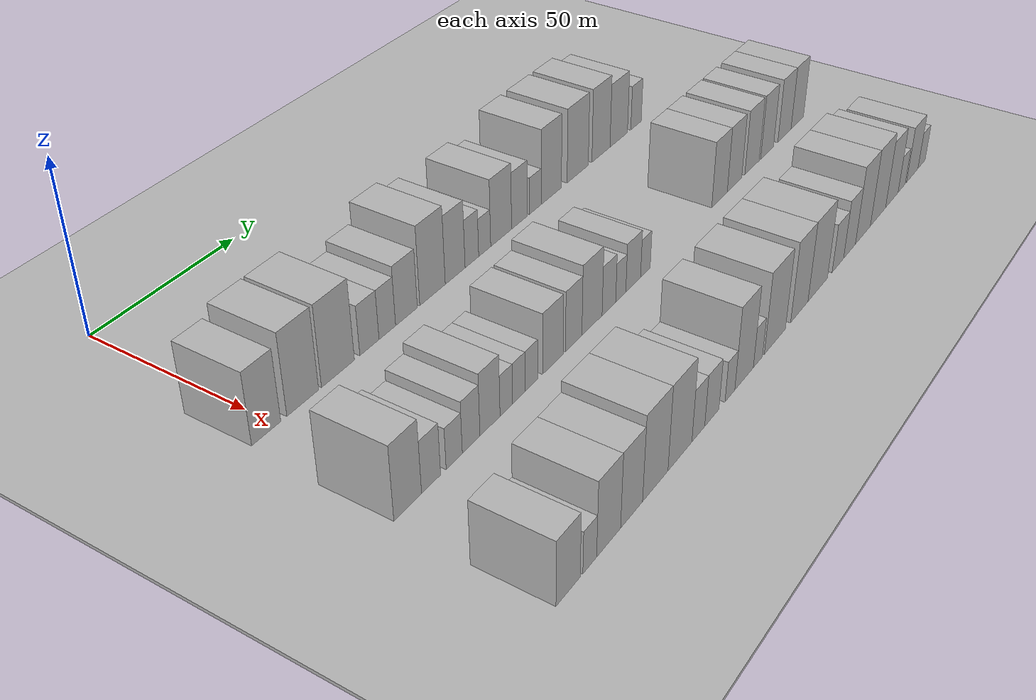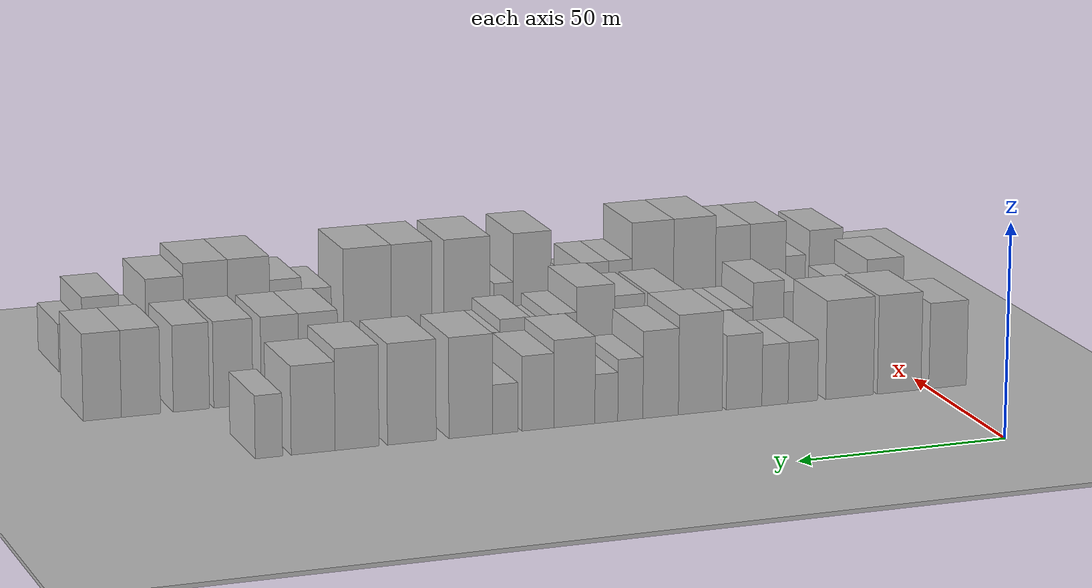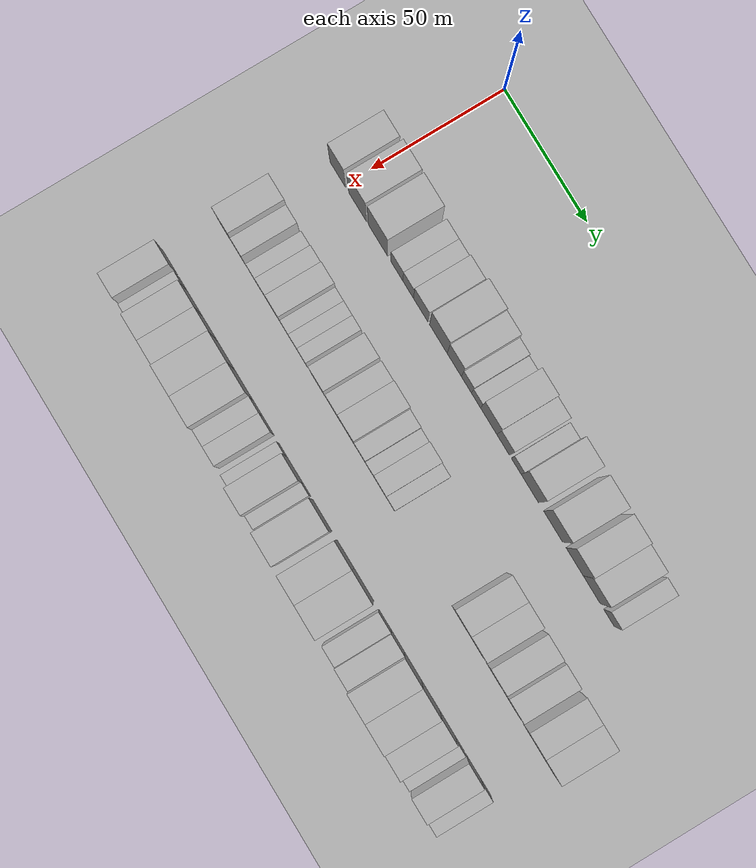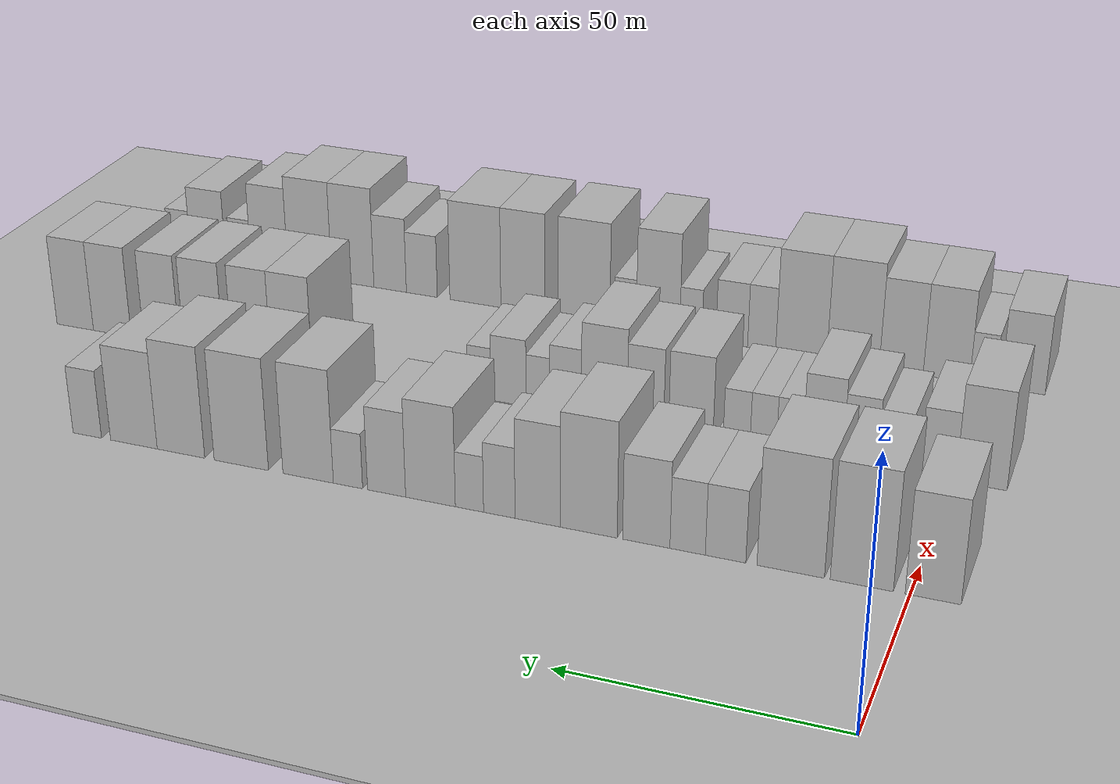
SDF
<sdf version="1.6">
 <world name="default">
  <include><name>ground_plane_1</name><uri>model://HANNAS_ground_plane</uri></include>
  <include>
   <name>ground_plane_2</name>
   <uri>model://HANNAS_ground_plane</uri>
   <pose>100 0 0  0 0 0</pose>
  </include>
  <model name="building_45">
   <static>1</static>
   <pose>50.0000 -3.9452 0 0.000000 0.000000 0.000000</pose>
   <link name="link">
    <pose>0 0 10.50 0 0 0</pose>
    <collision name="collision"><geometry><box><size>20.0000 9.5187 21.0000</size></box></geometry></collision>
    <visual name="visual">
     <cast_shadows>0</cast_shadows>
     <geometry><box><size>20.0000 9.5187 21.0000</size></box></geometry>
     <material>
      <script>
       <uri>model://HANNAS_wall/materials/scripts</uri>
       <uri>model://HANNAS_wall/materials/textures</uri>
       <name>vrc/HANNAS_wall</name>
      </script>
     </material>
    </visual>
   </link>
  </model>
  <model name="building_46">
   <static>1</static>
   <pose>50.0000 8.2798 0 0.000000 0.000000 0.000000</pose>
   <link name="link">
    <pose>0 0 12.00 0 0 0</pose>
    <collision name="collision"><geometry><box><size>20.0000 10.9314 24.0000</size></box></geometry></collision>
    <visual name="visual">
     <cast_shadows>0</cast_shadows>
     <geometry><box><size>20.0000 10.9314 24.0000</size></box></geometry>
     <material>
      <script>
       <uri>model://HANNAS_wall/materials/scripts</uri>
       <uri>model://HANNAS_wall/materials/textures</uri>
       <name>vrc/HANNAS_wall</name>
      </script>
     </material>
    </visual>
   </link>
  </model>
  <model name="building_47">
   <static>1</static>
   <pose>50.0000 20.7100 0 0.000000 0.000000 0.000000</pose>
   <link name="link">
    <pose>0 0 12.00 0 0 0</pose>
    <collision name="collision"><geometry><box><size>20.0000 11.9290 24.0000</size></box></geometry></collision>
    <visual name="visual">
     <cast_shadows>0</cast_shadows>
     <geometry><box><size>20.0000 11.9290 24.0000</size></box></geometry>
     <material>
      <script>
       <uri>model://HANNAS_wall/materials/scripts</uri>
       <uri>model://HANNAS_wall/materials/textures</uri>
       <name>vrc/HANNAS_wall</name>
      </script>
     </material>
    </visual>
   </link>
  </model>
  <model name="building_48">
   <static>1</static>
   <pose>50.0000 32.3218 0 0.000000 0.000000 0.000000</pose>
   <link name="link">
    <pose>0 0 7.50 0 0 0</pose>
    <collision name="collision"><geometry><box><size>20.0000 7.2945 15.0000</size></box></geometry></collision>
    <visual name="visual">
     <cast_shadows>0</cast_shadows>
     <geometry><box><size>20.0000 7.2945 15.0000</size></box></geometry>
     <material>
      <script>
       <uri>model://HANNAS_wall/materials/scripts</uri>
       <uri>model://HANNAS_wall/materials/textures</uri>
       <name>vrc/HANNAS_wall</name>
      </script>
     </material>
    </visual>
   </link>
  </model>
  <model name="building_49">
   <static>1</static>
   <pose>50.0000 39.2046 0 0.000000 0.000000 0.000000</pose>
   <link name="link">
    <pose>0 0 7.50 0 0 0</pose>
    <collision name="collision"><geometry><box><size>20.0000 6.4712 15.0000</size></box></geometry></collision>
    <visual name="visual">
     <cast_shadows>0</cast_shadows>
     <geometry><box><size>20.0000 6.4712 15.0000</size></box></geometry>
     <material>
      <script>
       <uri>model://HANNAS_wall/materials/scripts</uri>
       <uri>model://HANNAS_wall/materials/textures</uri>
       <name>vrc/HANNAS_wall</name>
      </script>
     </material>
    </visual>
   </link>
  </model>
  <model name="building_50">
   <static>1</static>
   <pose>50.0000 46.8143 0 0.000000 0.000000 0.000000</pose>
   <link name="link">
    <pose>0 0 9.00 0 0 0</pose>
    <collision name="collision"><geometry><box><size>20.0000 8.7482 18.0000</size></box></geometry></collision>
    <visual name="visual">
     <cast_shadows>0</cast_shadows>
     <geometry><box><size>20.0000 8.7482 18.0000</size></box></geometry>
     <material>
      <script>
       <uri>model://HANNAS_wall/materials/scripts</uri>
       <uri>model://HANNAS_wall/materials/textures</uri>
       <name>vrc/HANNAS_wall</name>
      </script>
     </material>
    </visual>
   </link>
  </model>
  <model name="building_51">
   <static>1</static>
   <pose>50.0000 57.5398 0 0.000000 0.000000 0.000000</pose>
   <link name="link">
    <pose>0 0 12.00 0 0 0</pose>
    <collision name="collision"><geometry><box><size>20.0000 10.7027 24.0000</size></box></geometry></collision>
    <visual name="visual">
     <cast_shadows>0</cast_shadows>
     <geometry><box><size>20.0000 10.7027 24.0000</size></box></geometry>
     <material>
      <script>
       <uri>model://HANNAS_wall/materials/scripts</uri>
       <uri>model://HANNAS_wall/materials/textures</uri>
       <name>vrc/HANNAS_wall</name>
      </script>
     </material>
    </visual>
   </link>
  </model>
  <model name="building_52">
   <static>1</static>
   <pose>50.0000 67.2111 0 0.000000 0.000000 0.000000</pose>
   <link name="link">
    <pose>0 0 10.50 0 0 0</pose>
    <collision name="collision"><geometry><box><size>20.0000 8.6400 21.0000</size></box></geometry></collision>
    <visual name="visual">
     <cast_shadows>0</cast_shadows>
     <geometry><box><size>20.0000 8.6400 21.0000</size></box></geometry>
     <material>
      <script>
       <uri>model://HANNAS_wall/materials/scripts</uri>
       <uri>model://HANNAS_wall/materials/textures</uri>
       <name>vrc/HANNAS_wall</name>
      </script>
     </material>
    </visual>
   </link>
  </model>
  <model name="building_53">
   <static>1</static>
   <pose>50.0000 74.5766 0 0.000000 0.000000 0.000000</pose>
   <link name="link">
    <pose>0 0 7.50 0 0 0</pose>
    <collision name="collision"><geometry><box><size>20.0000 6.0911 15.0000</size></box></geometry></collision>
    <visual name="visual">
     <cast_shadows>0</cast_shadows>
     <geometry><box><size>20.0000 6.0911 15.0000</size></box></geometry>
     <material>
      <script>
       <uri>model://HANNAS_wall/materials/scripts</uri>
       <uri>model://HANNAS_wall/materials/textures</uri>
       <name>vrc/HANNAS_wall</name>
      </script>
     </material>
    </visual>
   </link>
  </model>
  <model name="building_54">
   <static>1</static>
   <pose>50.0000 80.3774 0 0.000000 0.000000 0.000000</pose>
   <link name="link">
    <pose>0 0 6.00 0 0 0</pose>
    <collision name="collision"><geometry><box><size>20.0000 5.5105 12.0000</size></box></geometry></collision>
    <visual name="visual">
     <cast_shadows>0</cast_shadows>
     <geometry><box><size>20.0000 5.5105 12.0000</size></box></geometry>
     <material>
      <script>
       <uri>model://HANNAS_wall/materials/scripts</uri>
       <uri>model://HANNAS_wall/materials/textures</uri>
       <name>vrc/HANNAS_wall</name>
      </script>
     </material>
    </visual>
   </link>
  </model>
  <model name="building_55">
   <static>1</static>
   <pose>50.0000 88.0522 0 0.000000 0.000000 0.000000</pose>
   <link name="link">
    <pose>0 0 10.50 0 0 0</pose>
    <collision name="collision"><geometry><box><size>20.0000 9.8391 21.0000</size></box></geometry></collision>
    <visual name="visual">
     <cast_shadows>0</cast_shadows>
     <geometry><box><size>20.0000 9.8391 21.0000</size></box></geometry>
     <material>
      <script>
       <uri>model://HANNAS_wall/materials/scripts</uri>
       <uri>model://HANNAS_wall/materials/textures</uri>
       <name>vrc/HANNAS_wall</name>
      </script>
     </material>
    </visual>
   </link>
  </model>
  <model name="building_56">
   <static>1</static>
   <pose>50.0000 96.7897 0 0.000000 0.000000 0.000000</pose>
   <link name="link">
    <pose>0 0 9.00 0 0 0</pose>
    <collision name="collision"><geometry><box><size>20.0000 7.6358 18.0000</size></box></geometry></collision>
    <visual name="visual">
     <cast_shadows>0</cast_shadows>
     <geometry><box><size>20.0000 7.6358 18.0000</size></box></geometry>
     <material>
      <script>
       <uri>model://HANNAS_wall/materials/scripts</uri>
       <uri>model://HANNAS_wall/materials/textures</uri>
       <name>vrc/HANNAS_wall</name>
      </script>
     </material>
    </visual>
   </link>
  </model>
  <model name="building_57">
   <static>1</static>
   <pose>50.0000 104.5811 0 0.000000 0.000000 0.000000</pose>
   <link name="link">
    <pose>0 0 6.00 0 0 0</pose>
    <collision name="collision"><geometry><box><size>20.0000 5.9471 12.0000</size></box></geometry></collision>
    <visual name="visual">
     <cast_shadows>0</cast_shadows>
     <geometry><box><size>20.0000 5.9471 12.0000</size></box></geometry>
     <material>
      <script>
       <uri>model://HANNAS_wall/materials/scripts</uri>
       <uri>model://HANNAS_wall/materials/textures</uri>
       <name>vrc/HANNAS_wall</name>
      </script>
     </material>
    </visual>
   </link>
  </model>
  <model name="building_58">
   <static>1</static>
   <pose>50.0000 112.7505 0 0.000000 0.000000 0.000000</pose>
   <link name="link">
    <pose>0 0 12.00 0 0 0</pose>
    <collision name="collision"><geometry><box><size>20.0000 10.3918 24.0000</size></box></geometry></collision>
    <visual name="visual">
     <cast_shadows>0</cast_shadows>
     <geometry><box><size>20.0000 10.3918 24.0000</size></box></geometry>
     <material>
      <script>
       <uri>model://HANNAS_wall/materials/scripts</uri>
       <uri>model://HANNAS_wall/materials/textures</uri>
       <name>vrc/HANNAS_wall</name>
      </script>
     </material>
    </visual>
   </link>
  </model>
  <model name="building_59">
   <static>1</static>
   <pose>50.0000 126.6671 0 0.000000 0.000000 0.000000</pose>
   <link name="link">
    <pose>0 0 12.00 0 0 0</pose>
    <collision name="collision"><geometry><box><size>20.0000 11.4413 24.0000</size></box></geometry></collision>
    <visual name="visual">
     <cast_shadows>0</cast_shadows>
     <geometry><box><size>20.0000 11.4413 24.0000</size></box></geometry>
     <material>
      <script>
       <uri>model://HANNAS_wall/materials/scripts</uri>
       <uri>model://HANNAS_wall/materials/textures</uri>
       <name>vrc/HANNAS_wall</name>
      </script>
     </material>
    </visual>
   </link>
  </model>
  <model name="building_60">
   <static>1</static>
   <pose>50.0000 139.4916 0 0.000000 0.000000 0.000000</pose>
   <link name="link">
    <pose>0 0 12.00 0 0 0</pose>
    <collision name="collision"><geometry><box><size>20.0000 10.2075 24.0000</size></box></geometry></collision>
    <visual name="visual">
     <cast_shadows>0</cast_shadows>
     <geometry><box><size>20.0000 10.2075 24.0000</size></box></geometry>
     <material>
      <script>
       <uri>model://HANNAS_wall/materials/scripts</uri>
       <uri>model://HANNAS_wall/materials/textures</uri>
       <name>vrc/HANNAS_wall</name>
      </script>
     </material>
    </visual>
   </link>
  </model>
  <model name="building_61">
   <static>1</static>
   <pose>50.0000 149.6833 0 0.000000 0.000000 0.000000</pose>
   <link name="link">
    <pose>0 0 10.50 0 0 0</pose>
    <collision name="collision"><geometry><box><size>20.0000 10.1759 21.0000</size></box></geometry></collision>
    <visual name="visual">
     <cast_shadows>0</cast_shadows>
     <geometry><box><size>20.0000 10.1759 21.0000</size></box></geometry>
     <material>
      <script>
       <uri>model://HANNAS_wall/materials/scripts</uri>
       <uri>model://HANNAS_wall/materials/textures</uri>
       <name>vrc/HANNAS_wall</name>
      </script>
     </material>
    </visual>
   </link>
  </model>
  <model name="building_62">
   <static>1</static>
   <pose>50.0000 159.9207 0 0.000000 0.000000 0.000000</pose>
   <link name="link">
    <pose>0 0 7.50 0 0 0</pose>
    <collision name="collision"><geometry><box><size>20.0000 6.2989 15.0000</size></box></geometry></collision>
    <visual name="visual">
     <cast_shadows>0</cast_shadows>
     <geometry><box><size>20.0000 6.2989 15.0000</size></box></geometry>
     <material>
      <script>
       <uri>model://HANNAS_wall/materials/scripts</uri>
       <uri>model://HANNAS_wall/materials/textures</uri>
       <name>vrc/HANNAS_wall</name>
      </script>
     </material>
    </visual>
   </link>
  </model>
  <model name="building_126">
   <static>1</static>
   <pose>90.0000 -5.4050 0 0.000000 0.000000 0.000000</pose>
   <link name="link">
    <pose>0 0 10.50 0 0 0</pose>
    <collision name="collision"><geometry><box><size>20.0000 9.4507 21.0000</size></box></geometry></collision>
    <visual name="visual">
     <cast_shadows>0</cast_shadows>
     <geometry><box><size>20.0000 9.4507 21.0000</size></box></geometry>
     <material>
      <script>
       <uri>model://HANNAS_wall/materials/scripts</uri>
       <uri>model://HANNAS_wall/materials/textures</uri>
       <name>vrc/HANNAS_wall</name>
      </script>
     </material>
    </visual>
   </link>
  </model>
  <model name="building_127">
   <static>1</static>
   <pose>90.0000 2.6796 0 0.000000 0.000000 0.000000</pose>
   <link name="link">
    <pose>0 0 7.50 0 0 0</pose>
    <collision name="collision"><geometry><box><size>20.0000 6.7186 15.0000</size></box></geometry></collision>
    <visual name="visual">
     <cast_shadows>0</cast_shadows>
     <geometry><box><size>20.0000 6.7186 15.0000</size></box></geometry>
     <material>
      <script>
       <uri>model://HANNAS_wall/materials/scripts</uri>
       <uri>model://HANNAS_wall/materials/textures</uri>
       <name>vrc/HANNAS_wall</name>
      </script>
     </material>
    </visual>
   </link>
  </model>
  <model name="building_128">
   <static>1</static>
   <pose>90.0000 11.0172 0 0.000000 0.000000 0.000000</pose>
   <link name="link">
    <pose>0 0 6.00 0 0 0</pose>
    <collision name="collision"><geometry><box><size>20.0000 5.9565 12.0000</size></box></geometry></collision>
    <visual name="visual">
     <cast_shadows>0</cast_shadows>
     <geometry><box><size>20.0000 5.9565 12.0000</size></box></geometry>
     <material>
      <script>
       <uri>model://HANNAS_wall/materials/scripts</uri>
       <uri>model://HANNAS_wall/materials/textures</uri>
       <name>vrc/HANNAS_wall</name>
      </script>
     </material>
    </visual>
   </link>
  </model>
  <model name="building_129">
   <static>1</static>
   <pose>90.0000 17.3304 0 0.000000 0.000000 0.000000</pose>
   <link name="link">
    <pose>0 0 7.50 0 0 0</pose>
    <collision name="collision"><geometry><box><size>20.0000 6.6700 15.0000</size></box></geometry></collision>
    <visual name="visual">
     <cast_shadows>0</cast_shadows>
     <geometry><box><size>20.0000 6.6700 15.0000</size></box></geometry>
     <material>
      <script>
       <uri>model://HANNAS_wall/materials/scripts</uri>
       <uri>model://HANNAS_wall/materials/textures</uri>
       <name>vrc/HANNAS_wall</name>
      </script>
     </material>
    </visual>
   </link>
  </model>
  <model name="building_130">
   <static>1</static>
   <pose>90.0000 24.5818 0 0.000000 0.000000 0.000000</pose>
   <link name="link">
    <pose>0 0 9.00 0 0 0</pose>
    <collision name="collision"><geometry><box><size>20.0000 7.8327 18.0000</size></box></geometry></collision>
    <visual name="visual">
     <cast_shadows>0</cast_shadows>
     <geometry><box><size>20.0000 7.8327 18.0000</size></box></geometry>
     <material>
      <script>
       <uri>model://HANNAS_wall/materials/scripts</uri>
       <uri>model://HANNAS_wall/materials/textures</uri>
       <name>vrc/HANNAS_wall</name>
      </script>
     </material>
    </visual>
   </link>
  </model>
  <model name="building_131">
   <static>1</static>
   <pose>90.0000 31.0258 0 0.000000 0.000000 0.000000</pose>
   <link name="link">
    <pose>0 0 6.00 0 0 0</pose>
    <collision name="collision"><geometry><box><size>20.0000 5.0553 12.0000</size></box></geometry></collision>
    <visual name="visual">
     <cast_shadows>0</cast_shadows>
     <geometry><box><size>20.0000 5.0553 12.0000</size></box></geometry>
     <material>
      <script>
       <uri>model://HANNAS_wall/materials/scripts</uri>
       <uri>model://HANNAS_wall/materials/textures</uri>
       <name>vrc/HANNAS_wall</name>
      </script>
     </material>
    </visual>
   </link>
  </model>
  <model name="building_132">
   <static>1</static>
   <pose>90.0000 36.1423 0 0.000000 0.000000 0.000000</pose>
   <link name="link">
    <pose>0 0 6.00 0 0 0</pose>
    <collision name="collision"><geometry><box><size>20.0000 5.1777 12.0000</size></box></geometry></collision>
    <visual name="visual">
     <cast_shadows>0</cast_shadows>
     <geometry><box><size>20.0000 5.1777 12.0000</size></box></geometry>
     <material>
      <script>
       <uri>model://HANNAS_wall/materials/scripts</uri>
       <uri>model://HANNAS_wall/materials/textures</uri>
       <name>vrc/HANNAS_wall</name>
      </script>
     </material>
    </visual>
   </link>
  </model>
  <model name="building_133">
   <static>1</static>
   <pose>90.0000 41.3945 0 0.000000 0.000000 0.000000</pose>
   <link name="link">
    <pose>0 0 6.00 0 0 0</pose>
    <collision name="collision"><geometry><box><size>20.0000 5.3267 12.0000</size></box></geometry></collision>
    <visual name="visual">
     <cast_shadows>0</cast_shadows>
     <geometry><box><size>20.0000 5.3267 12.0000</size></box></geometry>
     <material>
      <script>
       <uri>model://HANNAS_wall/materials/scripts</uri>
       <uri>model://HANNAS_wall/materials/textures</uri>
       <name>vrc/HANNAS_wall</name>
      </script>
     </material>
    </visual>
   </link>
  </model>
  <model name="building_134">
   <static>1</static>
   <pose>90.0000 50.5342 0 0.000000 0.000000 0.000000</pose>
   <link name="link">
    <pose>0 0 9.00 0 0 0</pose>
    <collision name="collision"><geometry><box><size>20.0000 8.9527 18.0000</size></box></geometry></collision>
    <visual name="visual">
     <cast_shadows>0</cast_shadows>
     <geometry><box><size>20.0000 8.9527 18.0000</size></box></geometry>
     <material>
      <script>
       <uri>model://HANNAS_wall/materials/scripts</uri>
       <uri>model://HANNAS_wall/materials/textures</uri>
       <name>vrc/HANNAS_wall</name>
      </script>
     </material>
    </visual>
   </link>
  </model>
  <model name="building_135">
   <static>1</static>
   <pose>90.0000 59.7337 0 0.000000 0.000000 0.000000</pose>
   <link name="link">
    <pose>0 0 9.00 0 0 0</pose>
    <collision name="collision"><geometry><box><size>20.0000 7.4462 18.0000</size></box></geometry></collision>
    <visual name="visual">
     <cast_shadows>0</cast_shadows>
     <geometry><box><size>20.0000 7.4462 18.0000</size></box></geometry>
     <material>
      <script>
       <uri>model://HANNAS_wall/materials/scripts</uri>
       <uri>model://HANNAS_wall/materials/textures</uri>
       <name>vrc/HANNAS_wall</name>
      </script>
     </material>
    </visual>
   </link>
  </model>
  <model name="building_136">
   <static>1</static>
   <pose>90.0000 68.1835 0 0.000000 0.000000 0.000000</pose>
   <link name="link">
    <pose>0 0 10.50 0 0 0</pose>
    <collision name="collision"><geometry><box><size>20.0000 9.4535 21.0000</size></box></geometry></collision>
    <visual name="visual">
     <cast_shadows>0</cast_shadows>
     <geometry><box><size>20.0000 9.4535 21.0000</size></box></geometry>
     <material>
      <script>
       <uri>model://HANNAS_wall/materials/scripts</uri>
       <uri>model://HANNAS_wall/materials/textures</uri>
       <name>vrc/HANNAS_wall</name>
      </script>
     </material>
    </visual>
   </link>
  </model>
  <model name="building_137">
   <static>1</static>
   <pose>90.0000 76.1931 0 0.000000 0.000000 0.000000</pose>
   <link name="link">
    <pose>0 0 7.50 0 0 0</pose>
    <collision name="collision"><geometry><box><size>20.0000 6.5656 15.0000</size></box></geometry></collision>
    <visual name="visual">
     <cast_shadows>0</cast_shadows>
     <geometry><box><size>20.0000 6.5656 15.0000</size></box></geometry>
     <material>
      <script>
       <uri>model://HANNAS_wall/materials/scripts</uri>
       <uri>model://HANNAS_wall/materials/textures</uri>
       <name>vrc/HANNAS_wall</name>
      </script>
     </material>
    </visual>
   </link>
  </model>
  <model name="building_138">
   <static>1</static>
   <pose>90.0000 81.9869 0 0.000000 0.000000 0.000000</pose>
   <link name="link">
    <pose>0 0 6.00 0 0 0</pose>
    <collision name="collision"><geometry><box><size>20.0000 5.0221 12.0000</size></box></geometry></collision>
    <visual name="visual">
     <cast_shadows>0</cast_shadows>
     <geometry><box><size>20.0000 5.0221 12.0000</size></box></geometry>
     <material>
      <script>
       <uri>model://HANNAS_wall/materials/scripts</uri>
       <uri>model://HANNAS_wall/materials/textures</uri>
       <name>vrc/HANNAS_wall</name>
      </script>
     </material>
    </visual>
   </link>
  </model>
  <model name="building_139">
   <static>1</static>
   <pose>90.0000 88.2258 0 0.000000 0.000000 0.000000</pose>
   <link name="link">
    <pose>0 0 7.50 0 0 0</pose>
    <collision name="collision"><geometry><box><size>20.0000 7.4556 15.0000</size></box></geometry></collision>
    <visual name="visual">
     <cast_shadows>0</cast_shadows>
     <geometry><box><size>20.0000 7.4556 15.0000</size></box></geometry>
     <material>
      <script>
       <uri>model://HANNAS_wall/materials/scripts</uri>
       <uri>model://HANNAS_wall/materials/textures</uri>
       <name>vrc/HANNAS_wall</name>
      </script>
     </material>
    </visual>
   </link>
  </model>
  <model name="building_140">
   <static>1</static>
   <pose>90.0000 94.4622 0 0.000000 0.000000 0.000000</pose>
   <link name="link">
    <pose>0 0 6.00 0 0 0</pose>
    <collision name="collision"><geometry><box><size>20.0000 5.0172 12.0000</size></box></geometry></collision>
    <visual name="visual">
     <cast_shadows>0</cast_shadows>
     <geometry><box><size>20.0000 5.0172 12.0000</size></box></geometry>
     <material>
      <script>
       <uri>model://HANNAS_wall/materials/scripts</uri>
       <uri>model://HANNAS_wall/materials/textures</uri>
       <name>vrc/HANNAS_wall</name>
      </script>
     </material>
    </visual>
   </link>
  </model>
  <model name="building_141">
   <static>1</static>
   <pose>90.0000 136.0613 0 0.000000 0.000000 0.000000</pose>
   <link name="link">
    <pose>0 0 10.50 0 0 0</pose>
    <collision name="collision"><geometry><box><size>20.0000 9.3937 21.0000</size></box></geometry></collision>
    <visual name="visual">
     <cast_shadows>0</cast_shadows>
     <geometry><box><size>20.0000 9.3937 21.0000</size></box></geometry>
     <material>
      <script>
       <uri>model://HANNAS_wall/materials/scripts</uri>
       <uri>model://HANNAS_wall/materials/textures</uri>
       <name>vrc/HANNAS_wall</name>
      </script>
     </material>
    </visual>
   </link>
  </model>
  <model name="building_142">
   <static>1</static>
   <pose>90.0000 145.2577 0 0.000000 0.000000 0.000000</pose>
   <link name="link">
    <pose>0 0 10.50 0 0 0</pose>
    <collision name="collision"><geometry><box><size>20.0000 8.9990 21.0000</size></box></geometry></collision>
    <visual name="visual">
     <cast_shadows>0</cast_shadows>
     <geometry><box><size>20.0000 8.9990 21.0000</size></box></geometry>
     <material>
      <script>
       <uri>model://HANNAS_wall/materials/scripts</uri>
       <uri>model://HANNAS_wall/materials/textures</uri>
       <name>vrc/HANNAS_wall</name>
      </script>
     </material>
    </visual>
   </link>
  </model>
  <model name="building_143">
   <static>1</static>
   <pose>90.0000 156.4189 0 0.000000 0.000000 0.000000</pose>
   <link name="link">
    <pose>0 0 10.50 0 0 0</pose>
    <collision name="collision"><geometry><box><size>20.0000 9.3235 21.0000</size></box></geometry></collision>
    <visual name="visual">
     <cast_shadows>0</cast_shadows>
     <geometry><box><size>20.0000 9.3235 21.0000</size></box></geometry>
     <material>
      <script>
       <uri>model://HANNAS_wall/materials/scripts</uri>
       <uri>model://HANNAS_wall/materials/textures</uri>
       <name>vrc/HANNAS_wall</name>
      </script>
     </material>
    </visual>
   </link>
  </model>
  <model name="building_144">
   <static>1</static>
   <pose>90.0000 166.3644 0 0.000000 0.000000 0.000000</pose>
   <link name="link">
    <pose>0 0 10.50 0 0 0</pose>
    <collision name="collision"><geometry><box><size>20.0000 8.5675 21.0000</size></box></geometry></collision>
    <visual name="visual">
     <cast_shadows>0</cast_shadows>
     <geometry><box><size>20.0000 8.5675 21.0000</size></box></geometry>
     <material>
      <script>
       <uri>model://HANNAS_wall/materials/scripts</uri>
       <uri>model://HANNAS_wall/materials/textures</uri>
       <name>vrc/HANNAS_wall</name>
      </script>
     </material>
    </visual>
   </link>
  </model>
  <model name="building_145">
   <static>1</static>
   <pose>90.0000 178.2440 0 0.000000 0.000000 0.000000</pose>
   <link name="link">
    <pose>0 0 10.50 0 0 0</pose>
    <collision name="collision"><geometry><box><size>20.0000 9.1917 21.0000</size></box></geometry></collision>
    <visual name="visual">
     <cast_shadows>0</cast_shadows>
     <geometry><box><size>20.0000 9.1917 21.0000</size></box></geometry>
     <material>
      <script>
       <uri>model://HANNAS_wall/materials/scripts</uri>
       <uri>model://HANNAS_wall/materials/textures</uri>
       <name>vrc/HANNAS_wall</name>
      </script>
     </material>
    </visual>
   </link>
  </model>
  <model name="building_146">
   <static>1</static>
   <pose>90.0000 187.3032 0 0.000000 0.000000 0.000000</pose>
   <link name="link">
    <pose>0 0 10.50 0 0 0</pose>
    <collision name="collision"><geometry><box><size>20.0000 8.9266 21.0000</size></box></geometry></collision>
    <visual name="visual">
     <cast_shadows>0</cast_shadows>
     <geometry><box><size>20.0000 8.9266 21.0000</size></box></geometry>
     <material>
      <script>
       <uri>model://HANNAS_wall/materials/scripts</uri>
       <uri>model://HANNAS_wall/materials/textures</uri>
       <name>vrc/HANNAS_wall</name>
      </script>
     </material>
    </visual>
   </link>
  </model>
  <model name="building_205">
   <static>1</static>
   <pose>130.0000 -7.0425 0 0.000000 0.000000 0.000000</pose>
   <link name="link">
    <pose>0 0 9.00 0 0 0</pose>
    <collision name="collision"><geometry><box><size>20.0000 8.8533 18.0000</size></box></geometry></collision>
    <visual name="visual">
     <cast_shadows>0</cast_shadows>
     <geometry><box><size>20.0000 8.8533 18.0000</size></box></geometry>
     <material>
      <script>
       <uri>model://HANNAS_wall/materials/scripts</uri>
       <uri>model://HANNAS_wall/materials/textures</uri>
       <name>vrc/HANNAS_wall</name>
      </script>
     </material>
    </visual>
   </link>
  </model>
  <model name="building_206">
   <static>1</static>
   <pose>130.0000 1.0035 0 0.000000 0.000000 0.000000</pose>
   <link name="link">
    <pose>0 0 6.00 0 0 0</pose>
    <collision name="collision"><geometry><box><size>20.0000 5.2387 12.0000</size></box></geometry></collision>
    <visual name="visual">
     <cast_shadows>0</cast_shadows>
     <geometry><box><size>20.0000 5.2387 12.0000</size></box></geometry>
     <material>
      <script>
       <uri>model://HANNAS_wall/materials/scripts</uri>
       <uri>model://HANNAS_wall/materials/textures</uri>
       <name>vrc/HANNAS_wall</name>
      </script>
     </material>
    </visual>
   </link>
  </model>
  <model name="building_207">
   <static>1</static>
   <pose>130.0000 8.3530 0 0.000000 0.000000 0.000000</pose>
   <link name="link">
    <pose>0 0 10.50 0 0 0</pose>
    <collision name="collision"><geometry><box><size>20.0000 9.4603 21.0000</size></box></geometry></collision>
    <visual name="visual">
     <cast_shadows>0</cast_shadows>
     <geometry><box><size>20.0000 9.4603 21.0000</size></box></geometry>
     <material>
      <script>
       <uri>model://HANNAS_wall/materials/scripts</uri>
       <uri>model://HANNAS_wall/materials/textures</uri>
       <name>vrc/HANNAS_wall</name>
      </script>
     </material>
    </visual>
   </link>
  </model>
  <model name="building_208">
   <static>1</static>
   <pose>130.0000 17.6146 0 0.000000 0.000000 0.000000</pose>
   <link name="link">
    <pose>0 0 10.50 0 0 0</pose>
    <collision name="collision"><geometry><box><size>20.0000 9.0630 21.0000</size></box></geometry></collision>
    <visual name="visual">
     <cast_shadows>0</cast_shadows>
     <geometry><box><size>20.0000 9.0630 21.0000</size></box></geometry>
     <material>
      <script>
       <uri>model://HANNAS_wall/materials/scripts</uri>
       <uri>model://HANNAS_wall/materials/textures</uri>
       <name>vrc/HANNAS_wall</name>
      </script>
     </material>
    </visual>
   </link>
  </model>
  <model name="building_209">
   <static>1</static>
   <pose>130.0000 27.6326 0 0.000000 0.000000 0.000000</pose>
   <link name="link">
    <pose>0 0 12.00 0 0 0</pose>
    <collision name="collision"><geometry><box><size>20.0000 10.9728 24.0000</size></box></geometry></collision>
    <visual name="visual">
     <cast_shadows>0</cast_shadows>
     <geometry><box><size>20.0000 10.9728 24.0000</size></box></geometry>
     <material>
      <script>
       <uri>model://HANNAS_wall/materials/scripts</uri>
       <uri>model://HANNAS_wall/materials/textures</uri>
       <name>vrc/HANNAS_wall</name>
      </script>
     </material>
    </visual>
   </link>
  </model>
  <model name="building_210">
   <static>1</static>
   <pose>130.0000 38.5521 0 0.000000 0.000000 0.000000</pose>
   <link name="link">
    <pose>0 0 12.00 0 0 0</pose>
    <collision name="collision"><geometry><box><size>20.0000 10.8663 24.0000</size></box></geometry></collision>
    <visual name="visual">
     <cast_shadows>0</cast_shadows>
     <geometry><box><size>20.0000 10.8663 24.0000</size></box></geometry>
     <material>
      <script>
       <uri>model://HANNAS_wall/materials/scripts</uri>
       <uri>model://HANNAS_wall/materials/textures</uri>
       <name>vrc/HANNAS_wall</name>
      </script>
     </material>
    </visual>
   </link>
  </model>
  <model name="building_211">
   <static>1</static>
   <pose>130.0000 47.0079 0 0.000000 0.000000 0.000000</pose>
   <link name="link">
    <pose>0 0 7.50 0 0 0</pose>
    <collision name="collision"><geometry><box><size>20.0000 6.0453 15.0000</size></box></geometry></collision>
    <visual name="visual">
     <cast_shadows>0</cast_shadows>
     <geometry><box><size>20.0000 6.0453 15.0000</size></box></geometry>
     <material>
      <script>
       <uri>model://HANNAS_wall/materials/scripts</uri>
       <uri>model://HANNAS_wall/materials/textures</uri>
       <name>vrc/HANNAS_wall</name>
      </script>
     </material>
    </visual>
   </link>
  </model>
  <model name="building_212">
   <static>1</static>
   <pose>130.0000 53.4882 0 0.000000 0.000000 0.000000</pose>
   <link name="link">
    <pose>0 0 7.50 0 0 0</pose>
    <collision name="collision"><geometry><box><size>20.0000 6.9151 15.0000</size></box></geometry></collision>
    <visual name="visual">
     <cast_shadows>0</cast_shadows>
     <geometry><box><size>20.0000 6.9151 15.0000</size></box></geometry>
     <material>
      <script>
       <uri>model://HANNAS_wall/materials/scripts</uri>
       <uri>model://HANNAS_wall/materials/textures</uri>
       <name>vrc/HANNAS_wall</name>
      </script>
     </material>
    </visual>
   </link>
  </model>
  <model name="building_213">
   <static>1</static>
   <pose>130.0000 62.4119 0 0.000000 0.000000 0.000000</pose>
   <link name="link">
    <pose>0 0 6.00 0 0 0</pose>
    <collision name="collision"><geometry><box><size>20.0000 4.9324 12.0000</size></box></geometry></collision>
    <visual name="visual">
     <cast_shadows>0</cast_shadows>
     <geometry><box><size>20.0000 4.9324 12.0000</size></box></geometry>
     <material>
      <script>
       <uri>model://HANNAS_wall/materials/scripts</uri>
       <uri>model://HANNAS_wall/materials/textures</uri>
       <name>vrc/HANNAS_wall</name>
      </script>
     </material>
    </visual>
   </link>
  </model>
  <model name="building_214">
   <static>1</static>
   <pose>130.0000 69.7004 0 0.000000 0.000000 0.000000</pose>
   <link name="link">
    <pose>0 0 12.00 0 0 0</pose>
    <collision name="collision"><geometry><box><size>20.0000 9.6446 24.0000</size></box></geometry></collision>
    <visual name="visual">
     <cast_shadows>0</cast_shadows>
     <geometry><box><size>20.0000 9.6446 24.0000</size></box></geometry>
     <material>
      <script>
       <uri>model://HANNAS_wall/materials/scripts</uri>
       <uri>model://HANNAS_wall/materials/textures</uri>
       <name>vrc/HANNAS_wall</name>
      </script>
     </material>
    </visual>
   </link>
  </model>
  <model name="building_215">
   <static>1</static>
   <pose>130.0000 76.9707 0 0.000000 0.000000 0.000000</pose>
   <link name="link">
    <pose>0 0 6.00 0 0 0</pose>
    <collision name="collision"><geometry><box><size>20.0000 4.8960 12.0000</size></box></geometry></collision>
    <visual name="visual">
     <cast_shadows>0</cast_shadows>
     <geometry><box><size>20.0000 4.8960 12.0000</size></box></geometry>
     <material>
      <script>
       <uri>model://HANNAS_wall/materials/scripts</uri>
       <uri>model://HANNAS_wall/materials/textures</uri>
       <name>vrc/HANNAS_wall</name>
      </script>
     </material>
    </visual>
   </link>
  </model>
  <model name="building_216">
   <static>1</static>
   <pose>130.0000 86.3074 0 0.000000 0.000000 0.000000</pose>
   <link name="link">
    <pose>0 0 12.00 0 0 0</pose>
    <collision name="collision"><geometry><box><size>20.0000 11.7774 24.0000</size></box></geometry></collision>
    <visual name="visual">
     <cast_shadows>0</cast_shadows>
     <geometry><box><size>20.0000 11.7774 24.0000</size></box></geometry>
     <material>
      <script>
       <uri>model://HANNAS_wall/materials/scripts</uri>
       <uri>model://HANNAS_wall/materials/textures</uri>
       <name>vrc/HANNAS_wall</name>
      </script>
     </material>
    </visual>
   </link>
  </model>
  <model name="building_217">
   <static>1</static>
   <pose>130.0000 100.3029 0 0.000000 0.000000 0.000000</pose>
   <link name="link">
    <pose>0 0 12.00 0 0 0</pose>
    <collision name="collision"><geometry><box><size>20.0000 10.2135 24.0000</size></box></geometry></collision>
    <visual name="visual">
     <cast_shadows>0</cast_shadows>
     <geometry><box><size>20.0000 10.2135 24.0000</size></box></geometry>
     <material>
      <script>
       <uri>model://HANNAS_wall/materials/scripts</uri>
       <uri>model://HANNAS_wall/materials/textures</uri>
       <name>vrc/HANNAS_wall</name>
      </script>
     </material>
    </visual>
   </link>
  </model>
  <model name="building_218">
   <static>1</static>
   <pose>130.0000 111.4009 0 0.000000 0.000000 0.000000</pose>
   <link name="link">
    <pose>0 0 12.00 0 0 0</pose>
    <collision name="collision"><geometry><box><size>20.0000 11.9825 24.0000</size></box></geometry></collision>
    <visual name="visual">
     <cast_shadows>0</cast_shadows>
     <geometry><box><size>20.0000 11.9825 24.0000</size></box></geometry>
     <material>
      <script>
       <uri>model://HANNAS_wall/materials/scripts</uri>
       <uri>model://HANNAS_wall/materials/textures</uri>
       <name>vrc/HANNAS_wall</name>
      </script>
     </material>
    </visual>
   </link>
  </model>
  <model name="building_219">
   <static>1</static>
   <pose>130.0000 124.0966 0 0.000000 0.000000 0.000000</pose>
   <link name="link">
    <pose>0 0 7.50 0 0 0</pose>
    <collision name="collision"><geometry><box><size>20.0000 7.4088 15.0000</size></box></geometry></collision>
    <visual name="visual">
     <cast_shadows>0</cast_shadows>
     <geometry><box><size>20.0000 7.4088 15.0000</size></box></geometry>
     <material>
      <script>
       <uri>model://HANNAS_wall/materials/scripts</uri>
       <uri>model://HANNAS_wall/materials/textures</uri>
       <name>vrc/HANNAS_wall</name>
      </script>
     </material>
    </visual>
   </link>
  </model>
  <model name="building_220">
   <static>1</static>
   <pose>130.0000 131.7264 0 0.000000 0.000000 0.000000</pose>
   <link name="link">
    <pose>0 0 9.00 0 0 0</pose>
    <collision name="collision"><geometry><box><size>20.0000 7.8510 18.0000</size></box></geometry></collision>
    <visual name="visual">
     <cast_shadows>0</cast_shadows>
     <geometry><box><size>20.0000 7.8510 18.0000</size></box></geometry>
     <material>
      <script>
       <uri>model://HANNAS_wall/materials/scripts</uri>
       <uri>model://HANNAS_wall/materials/textures</uri>
       <name>vrc/HANNAS_wall</name>
      </script>
     </material>
    </visual>
   </link>
  </model>
  <model name="building_221">
   <static>1</static>
   <pose>130.0000 140.7974 0 0.000000 0.000000 0.000000</pose>
   <link name="link">
    <pose>0 0 12.00 0 0 0</pose>
    <collision name="collision"><geometry><box><size>20.0000 10.2910 24.0000</size></box></geometry></collision>
    <visual name="visual">
     <cast_shadows>0</cast_shadows>
     <geometry><box><size>20.0000 10.2910 24.0000</size></box></geometry>
     <material>
      <script>
       <uri>model://HANNAS_wall/materials/scripts</uri>
       <uri>model://HANNAS_wall/materials/textures</uri>
       <name>vrc/HANNAS_wall</name>
      </script>
     </material>
    </visual>
   </link>
  </model>
  <model name="building_222">
   <static>1</static>
   <pose>130.0000 151.3587 0 0.000000 0.000000 0.000000</pose>
   <link name="link">
    <pose>0 0 12.00 0 0 0</pose>
    <collision name="collision"><geometry><box><size>20.0000 10.8315 24.0000</size></box></geometry></collision>
    <visual name="visual">
     <cast_shadows>0</cast_shadows>
     <geometry><box><size>20.0000 10.8315 24.0000</size></box></geometry>
     <material>
      <script>
       <uri>model://HANNAS_wall/materials/scripts</uri>
       <uri>model://HANNAS_wall/materials/textures</uri>
       <name>vrc/HANNAS_wall</name>
      </script>
     </material>
    </visual>
   </link>
  </model>
  <model name="building_223">
   <static>1</static>
   <pose>130.0000 161.3960 0 0.000000 0.000000 0.000000</pose>
   <link name="link">
    <pose>0 0 10.50 0 0 0</pose>
    <collision name="collision"><geometry><box><size>20.0000 9.2432 21.0000</size></box></geometry></collision>
    <visual name="visual">
     <cast_shadows>0</cast_shadows>
     <geometry><box><size>20.0000 9.2432 21.0000</size></box></geometry>
     <material>
      <script>
       <uri>model://HANNAS_wall/materials/scripts</uri>
       <uri>model://HANNAS_wall/materials/textures</uri>
       <name>vrc/HANNAS_wall</name>
      </script>
     </material>
    </visual>
   </link>
  </model>
  <model name="building_224">
   <static>1</static>
   <pose>130.0000 168.7359 0 0.000000 0.000000 0.000000</pose>
   <link name="link">
    <pose>0 0 6.00 0 0 0</pose>
    <collision name="collision"><geometry><box><size>20.0000 5.4365 12.0000</size></box></geometry></collision>
    <visual name="visual">
     <cast_shadows>0</cast_shadows>
     <geometry><box><size>20.0000 5.4365 12.0000</size></box></geometry>
     <material>
      <script>
       <uri>model://HANNAS_wall/materials/scripts</uri>
       <uri>model://HANNAS_wall/materials/textures</uri>
       <name>vrc/HANNAS_wall</name>
      </script>
     </material>
    </visual>
   </link>
  </model>
  <model name="building_225">
   <static>1</static>
   <pose>130.0000 176.9376 0 0.000000 0.000000 0.000000</pose>
   <link name="link">
    <pose>0 0 9.00 0 0 0</pose>
    <collision name="collision"><geometry><box><size>20.0000 8.9668 18.0000</size></box></geometry></collision>
    <visual name="visual">
     <cast_shadows>0</cast_shadows>
     <geometry><box><size>20.0000 8.9668 18.0000</size></box></geometry>
     <material>
      <script>
       <uri>model://HANNAS_wall/materials/scripts</uri>
       <uri>model://HANNAS_wall/materials/textures</uri>
       <name>vrc/HANNAS_wall</name>
      </script>
     </material>
    </visual>
   </link>
  </model>
  <model name="building_226">
   <static>1</static>
   <pose>130.0000 184.3101 0 0.000000 0.000000 0.000000</pose>
   <link name="link">
    <pose>0 0 6.00 0 0 0</pose>
    <collision name="collision"><geometry><box><size>20.0000 5.7783 12.0000</size></box></geometry></collision>
    <visual name="visual">
     <cast_shadows>0</cast_shadows>
     <geometry><box><size>20.0000 5.7783 12.0000</size></box></geometry>
     <material>
      <script>
       <uri>model://HANNAS_wall/materials/scripts</uri>
       <uri>model://HANNAS_wall/materials/textures</uri>
       <name>vrc/HANNAS_wall</name>
      </script>
     </material>
    </visual>
   </link>
  </model>
 </world>
</sdf>
